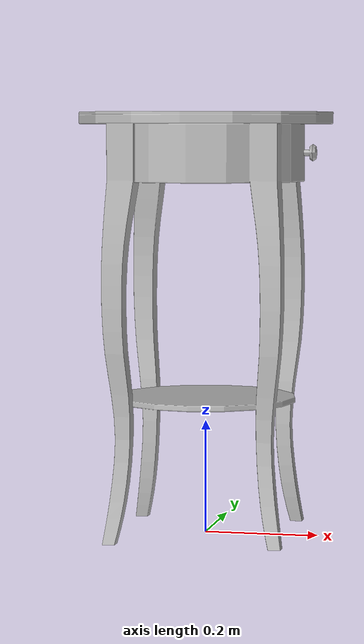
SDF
<?xml version='1.0'?>
<sdf version='1.4'>
  <model name='s__443'>
    <pose>0 0 0 0 0 0</pose>
    <static>true</static>
    <link name='link'>
      <collision name='collision'>
        <pose>0 0 0 0 0 0</pose>
        <geometry>
          <box>
            <size>0.45 0.45 2</size>
          </box>
        </geometry>
      </collision>
      <visual name='visual'>
        <pose>0 0 0 0 0 0</pose>
        <geometry>
          <mesh><uri>model://s__443/s__443.dae</uri></mesh>
        </geometry>
      </visual>
    </link>
  </model>
</sdf>
